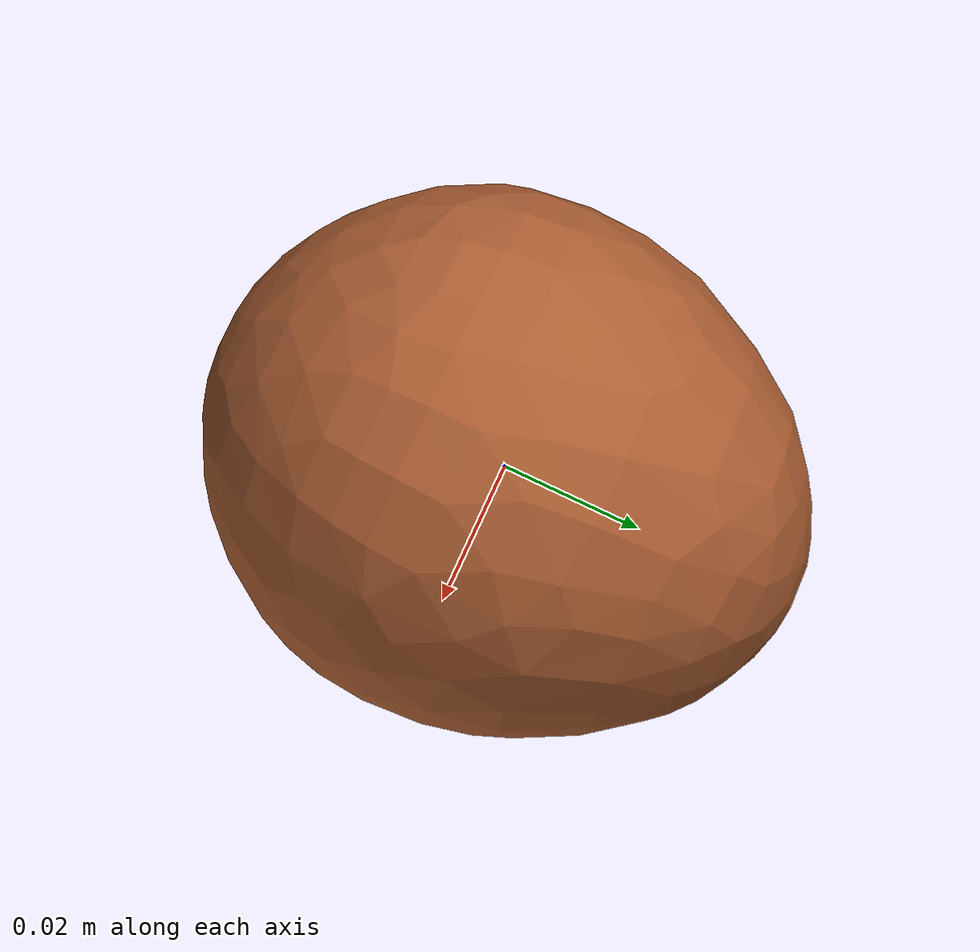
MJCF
<mujoco model="Egg_9">
  <compiler autolimits="true" boundmass="0.01" angle="radian"/>
  <default>
    <default class="/">
      <default class="__VISUAL_MJT__">
        <geom contype="0" conaffinity="0" group="0"/>
      </default>
      <default class="__STRUCTURAL_MJT__">
        <geom contype="8" conaffinity="15" group="4" friction="0.90000000000000002 0.90000000000000002 0.001" solref="0.025000000000000001 1" solimp="0.998 0.998 0.001"/>
      </default>
      <default class="__DYNAMIC_MJT__">
        <geom contype="1" conaffinity="15" group="4" friction="0.90000000000000002 0.90000000000000002 0.001" solref="0.025000000000000001 1" solimp="0.998 0.998 0.001"/>
      </default>
    </default>
  </default>
  <asset>
    <material name="material_Egg3_Mat" class="/" specular="0.5" shininess="0.5" rgba="0.66911770000000004 0.3643962 0.19679930000000001 1"/>
    <mesh name="Egg_9_egg_9" class="/" file="Egg_9_egg_9/Egg_9_egg_9.obj" scale="1 1 1"/>
  </asset>
  <worldbody>
    <body name="Egg_9">
      <joint name="Egg_9_free" class="/" type="free" pos="0 0 0" axis="0 0 1" stiffness="0" range="0 0" armature="0" damping="0.10000000000000001" frictionloss="0"/>
      <body name="Egg_9_egg_9" pos="-0 0 0" quat="1 0 0 0">
        <geom name="Egg_9_egg_9" class="__VISUAL_MJT__" type="mesh" material="material_Egg3_Mat" shellinertia="true" mesh="Egg_9_egg_9"/>
        <geom name="Egg_9_PrimitiveCollider_0" class="__DYNAMIC_MJT__" type="capsule" size="0.034796562045812607 0.0072540752589702606" rgba="0 1 0 1" pos="-0 0 0" quat="0.70710678118654757 0.70710678118654746 0 0"/>
      </body>
    </body>
  </worldbody>
</mujoco>
